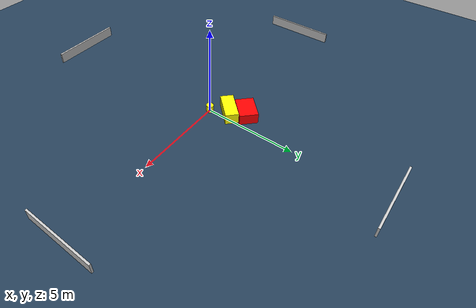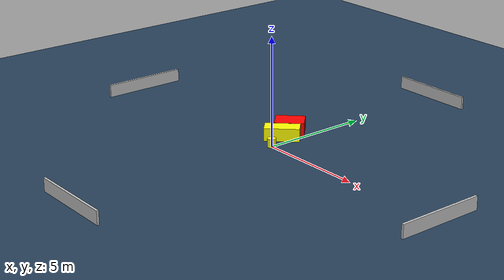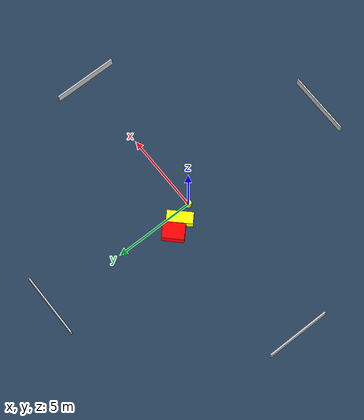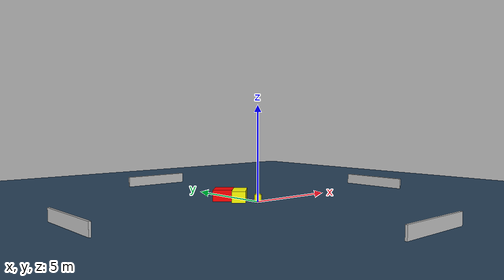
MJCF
<?xml version="1.0" ?>
<mujoco model="generated_environment">
  <option timestep="0.01" integrator="RK4" cone="elliptic"/>
  <default>
    <geom density="1"/>
  </default>
  <asset>
    <texture builtin="gradient" height="3072" name="skybox" rgb1="0.3 0.5 0.7" rgb2="0 0 0" type="skybox" width="512"/>
    <texture builtin="checker" height="300" name="groundplane" rgb1="0.2 0.3 0.4" rgb2="0.1 0.2 0.3" type="2d" width="300"/>
    <material name="groundplane" reflectance="0.2" texrepeat="5 5" texture="groundplane"/>
  </asset>
  <worldbody>
    <light dir="0 0 -1" directional="true" pos="0 0 1.5"/>
    <geom condim="3" friction="0.5 0.005 0.001" material="groundplane" name="floor" pos="0 0 0" size="0 0 0.05" type="plane"/>
    <body name="walls">
      <geom name="wall_1" condim="4" pos="-10.0 0.0 0.3" rgba="0.800000011920929 0.800000011920929 0.800000011920929 1.0" size="0.05 2.0 0.3" type="box"/>
      <geom name="wall_2" condim="4" pos="10.0 0.0 0.3" rgba="0.800000011920929 0.800000011920929 0.800000011920929 1.0" size="0.05 2.0 0.3" type="box"/>
      <geom name="wall_3" condim="4" pos="0.0 -10.0 0.3" rgba="0.800000011920929 0.800000011920929 0.800000011920929 1.0" size="2.0 0.05 0.3" type="box"/>
      <geom name="wall_4" condim="4" pos="0.0 10.0 0.3" rgba="0.800000011920929 0.800000011920929 0.800000011920929 1.0" size="2.0 0.05 0.3" type="box"/>
    </body>
    <body name="robot">
      <joint name="joint_x" type="slide" pos="0 0 0" axis="1 0 0"/>
      <joint name="joint_y" type="slide" pos="0 0 0" axis="0 1 0"/>
      <geom name="robot" type="cylinder" pos="0.0 0.0 0.2" size="0.2 0.2 0.0" mass="5.0" friction="1.0 0.005 0.0001" condim="4" rgba="1.0 1.0 0.0 1.0"/>
    </body>
    <body name="obstacle_1_movable">
      <geom name="obstacle_1_movable" condim="4" pos="-0.44133196339067704 0.9561355776078113 0.3" euler="0 0 316.13821270814816" friction="0.0 0.005 0.001" rgba="1.0 1.0 0.0 1.0" size="0.357645033475417 0.7940408560729288 0.3" type="box" mass="0.1"/>
      <joint type="free"/>
    </body>
    <body name="obstacle_2_static">
      <geom name="obstacle_2_static" condim="4" pos="-0.872481565309504 1.7624025248229602 0.3" euler="0 0 315.57116217981803" friction="0.0 0.005 0.001" rgba="1.0 0.0 0.0 1.0" size="0.5015200725931682 0.671162728793645 0.3" type="box"/>
    </body>
  </worldbody>
  <actuator>
    <motor name="actuator_x" joint="joint_x" gear="1" ctrlrange="-1 1"/>
    <motor name="actuator_y" joint="joint_y" gear="1" ctrlrange="-1 1"/>
  </actuator>
</mujoco>
